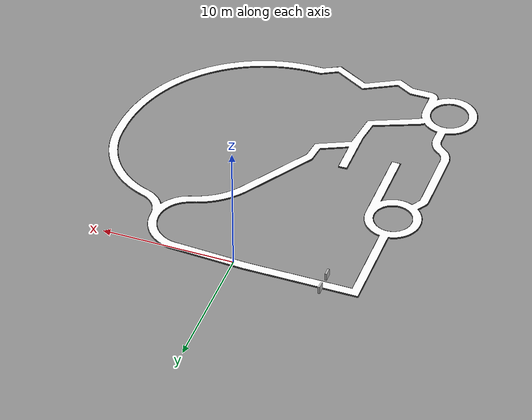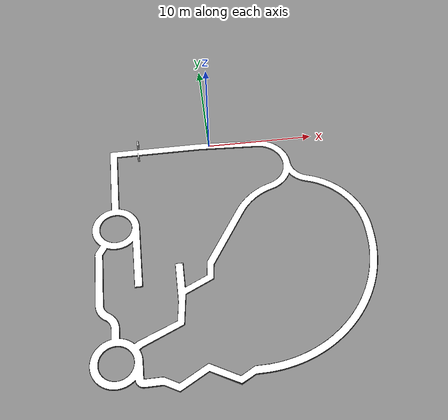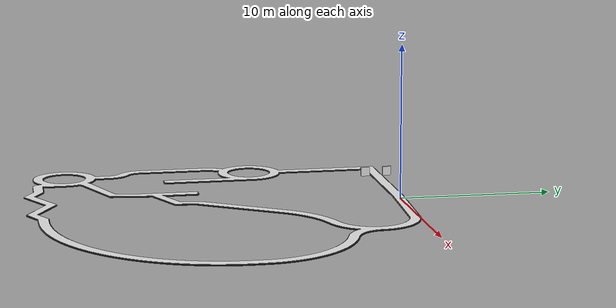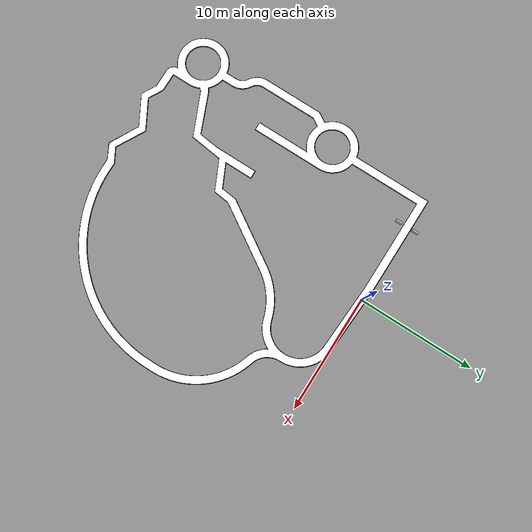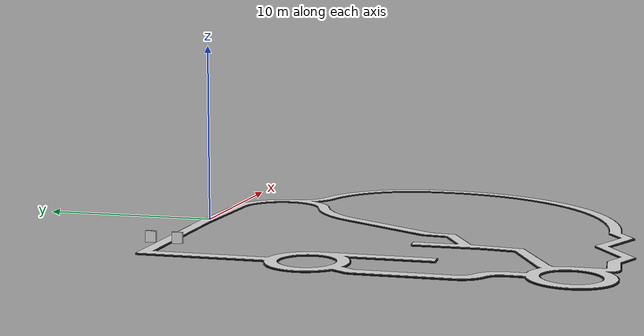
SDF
<?xml version="1.0"?>
<sdf version="1.10">
    <model name="test_track_v12">
        <static>false</static>
        <link name="main">
            <collision name="collision">
                <pose>0 0 0 0 0 0</pose>
                <geometry>
                    <plane>
                        <normal>0 0 1</normal>
                        <size>100 100</size>
                    </plane>
                </geometry>
            </collision>
            <visual name="test_track_v12">
                <pose>8 0.4 -0.06 0 0 3.14</pose>
                <geometry>
                    <mesh>
                        <scale>1.5 1.5 1.5</scale>
                        <uri>meshes/test_track_v12.dae</uri>
                    </mesh>
                </geometry>
            </visual>
        </link>

        <joint name="world_joint" type="fixed">
            <parent>world</parent>
            <child>main</child>
        </joint>
    </model>
</sdf>
